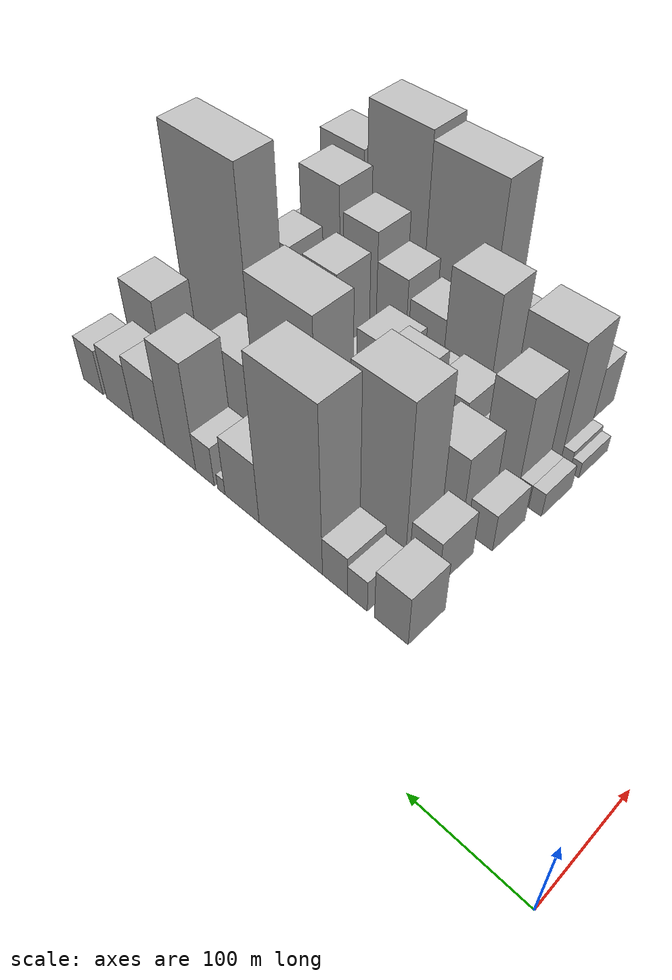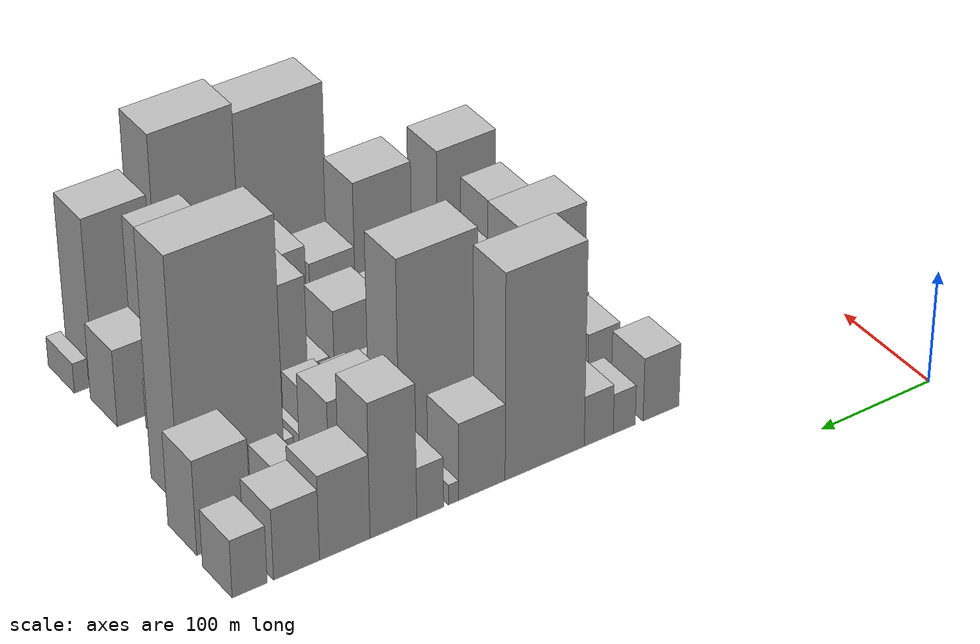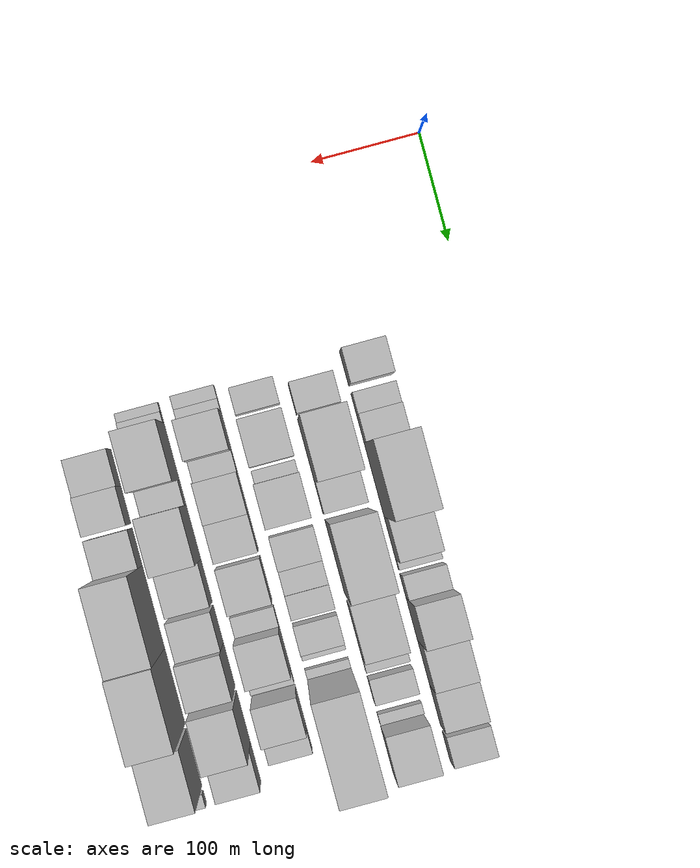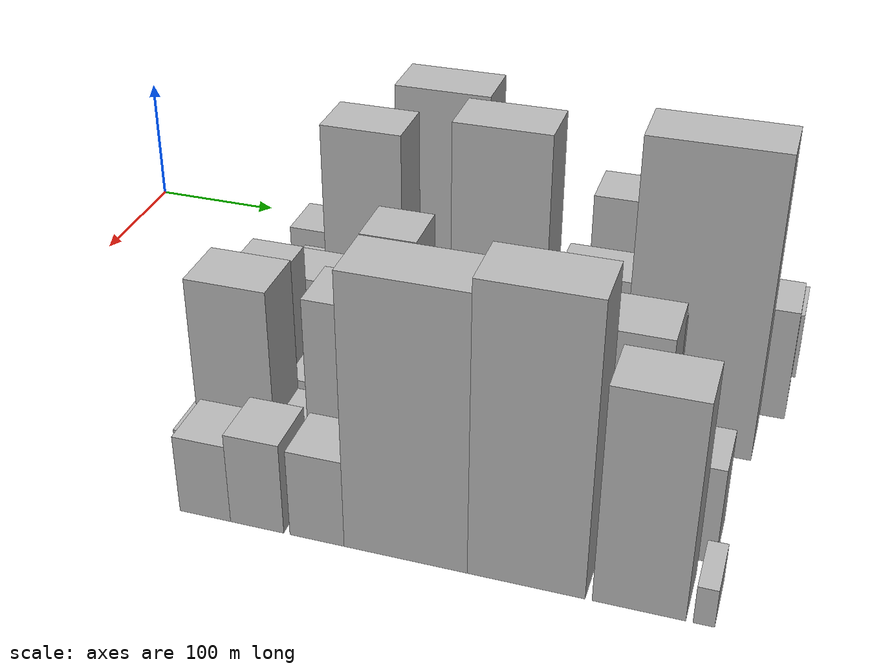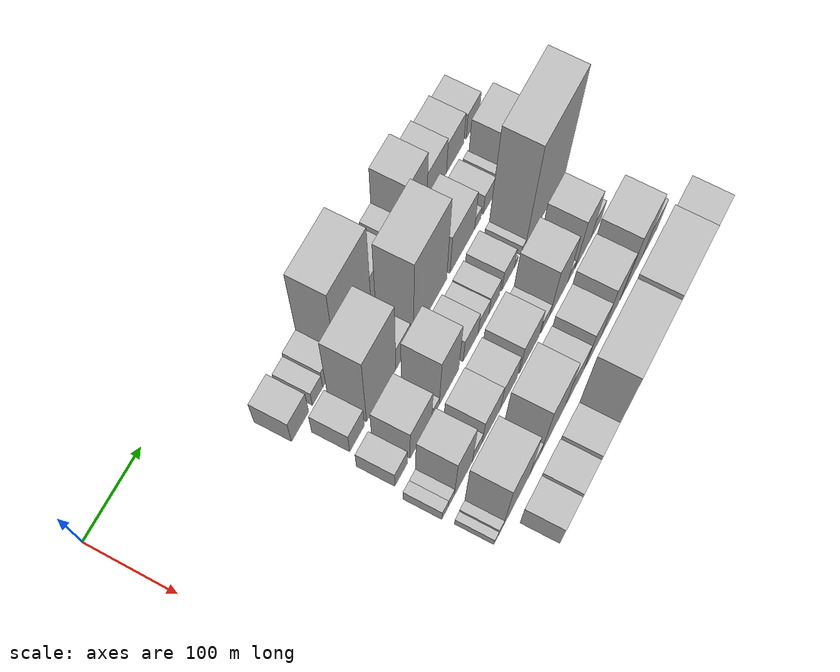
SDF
<sdf version="1.6">
 <world name="default">
  <model name="building_26">
   <static>1</static>
   <pose>100.0000 186.0648 0 0.000000 0.000000 0.000000</pose>
   <link name="link">
    <pose>0 0 28.50 0 0 0</pose>
    <collision name="collision"><geometry><box><size>40.0000 32.3198 57.0000</size></box></geometry></collision>
    <visual name="visual">
     <cast_shadows>0</cast_shadows>
     <geometry><box><size>40.0000 32.3198 57.0000</size></box></geometry>
     <material>
      <script>
       <uri>model://HANNAS_wall/materials/scripts</uri>
       <uri>model://HANNAS_wall/materials/textures</uri>
       <name>vrc/HANNAS_wall</name>
      </script>
     </material>
    </visual>
   </link>
  </model>
  <model name="building_27">
   <static>1</static>
   <pose>100.0000 219.0778 0 0.000000 0.000000 0.000000</pose>
   <link name="link">
    <pose>0 0 18.00 0 0 0</pose>
    <collision name="collision"><geometry><box><size>40.0000 19.7062 36.0000</size></box></geometry></collision>
    <visual name="visual">
     <cast_shadows>0</cast_shadows>
     <geometry><box><size>40.0000 19.7062 36.0000</size></box></geometry>
     <material>
      <script>
       <uri>model://HANNAS_wall/materials/scripts</uri>
       <uri>model://HANNAS_wall/materials/textures</uri>
       <name>vrc/HANNAS_wall</name>
      </script>
     </material>
    </visual>
   </link>
  </model>
  <model name="building_28">
   <static>1</static>
   <pose>100.0000 241.7471 0 0.000000 0.000000 0.000000</pose>
   <link name="link">
    <pose>0 0 22.50 0 0 0</pose>
    <collision name="collision"><geometry><box><size>40.0000 25.6323 45.0000</size></box></geometry></collision>
    <visual name="visual">
     <cast_shadows>0</cast_shadows>
     <geometry><box><size>40.0000 25.6323 45.0000</size></box></geometry>
     <material>
      <script>
       <uri>model://HANNAS_wall/materials/scripts</uri>
       <uri>model://HANNAS_wall/materials/textures</uri>
       <name>vrc/HANNAS_wall</name>
      </script>
     </material>
    </visual>
   </link>
  </model>
  <model name="building_29">
   <static>1</static>
   <pose>100.0000 288.9999 0 0.000000 0.000000 0.000000</pose>
   <link name="link">
    <pose>0 0 91.50 0 0 0</pose>
    <collision name="collision"><geometry><box><size>40.0000 68.8734 183.0000</size></box></geometry></collision>
    <visual name="visual">
     <cast_shadows>0</cast_shadows>
     <geometry><box><size>40.0000 68.8734 183.0000</size></box></geometry>
     <material>
      <script>
       <uri>model://HANNAS_wall/materials/scripts</uri>
       <uri>model://HANNAS_wall/materials/textures</uri>
       <name>vrc/HANNAS_wall</name>
      </script>
     </material>
    </visual>
   </link>
  </model>
  <model name="building_30">
   <static>1</static>
   <pose>100.0000 343.2457 0 0.000000 0.000000 0.000000</pose>
   <link name="link">
    <pose>0 0 34.50 0 0 0</pose>
    <collision name="collision"><geometry><box><size>40.0000 39.6182 69.0000</size></box></geometry></collision>
    <visual name="visual">
     <cast_shadows>0</cast_shadows>
     <geometry><box><size>40.0000 39.6182 69.0000</size></box></geometry>
     <material>
      <script>
       <uri>model://HANNAS_wall/materials/scripts</uri>
       <uri>model://HANNAS_wall/materials/textures</uri>
       <name>vrc/HANNAS_wall</name>
      </script>
     </material>
    </visual>
   </link>
  </model>
  <model name="building_31">
   <static>1</static>
   <pose>100.0000 367.4526 0 0.000000 0.000000 0.000000</pose>
   <link name="link">
    <pose>0 0 9.00 0 0 0</pose>
    <collision name="collision"><geometry><box><size>40.0000 8.7956 18.0000</size></box></geometry></collision>
    <visual name="visual">
     <cast_shadows>0</cast_shadows>
     <geometry><box><size>40.0000 8.7956 18.0000</size></box></geometry>
     <material>
      <script>
       <uri>model://HANNAS_wall/materials/scripts</uri>
       <uri>model://HANNAS_wall/materials/textures</uri>
       <name>vrc/HANNAS_wall</name>
      </script>
     </material>
    </visual>
   </link>
  </model>
  <model name="building_32">
   <static>1</static>
   <pose>100.0000 387.1631 0 0.000000 0.000000 0.000000</pose>
   <link name="link">
    <pose>0 0 22.50 0 0 0</pose>
    <collision name="collision"><geometry><box><size>40.0000 22.6254 45.0000</size></box></geometry></collision>
    <visual name="visual">
     <cast_shadows>0</cast_shadows>
     <geometry><box><size>40.0000 22.6254 45.0000</size></box></geometry>
     <material>
      <script>
       <uri>model://HANNAS_wall/materials/scripts</uri>
       <uri>model://HANNAS_wall/materials/textures</uri>
       <name>vrc/HANNAS_wall</name>
      </script>
     </material>
    </visual>
   </link>
  </model>
  <model name="building_33">
   <static>1</static>
   <pose>100.0000 417.9332 0 0.000000 0.000000 0.000000</pose>
   <link name="link">
    <pose>0 0 60.00 0 0 0</pose>
    <collision name="collision"><geometry><box><size>40.0000 38.9148 120.0000</size></box></geometry></collision>
    <visual name="visual">
     <cast_shadows>0</cast_shadows>
     <geometry><box><size>40.0000 38.9148 120.0000</size></box></geometry>
     <material>
      <script>
       <uri>model://HANNAS_wall/materials/scripts</uri>
       <uri>model://HANNAS_wall/materials/textures</uri>
       <name>vrc/HANNAS_wall</name>
      </script>
     </material>
    </visual>
   </link>
  </model>
  <model name="building_34">
   <static>1</static>
   <pose>100.0000 458.2009 0 0.000000 0.000000 0.000000</pose>
   <link name="link">
    <pose>0 0 37.50 0 0 0</pose>
    <collision name="collision"><geometry><box><size>40.0000 41.6207 75.0000</size></box></geometry></collision>
    <visual name="visual">
     <cast_shadows>0</cast_shadows>
     <geometry><box><size>40.0000 41.6207 75.0000</size></box></geometry>
     <material>
      <script>
       <uri>model://HANNAS_wall/materials/scripts</uri>
       <uri>model://HANNAS_wall/materials/textures</uri>
       <name>vrc/HANNAS_wall</name>
      </script>
     </material>
    </visual>
   </link>
  </model>
  <model name="building_35">
   <static>1</static>
   <pose>100.0000 497.6259 0 0.000000 0.000000 0.000000</pose>
   <link name="link">
    <pose>0 0 31.50 0 0 0</pose>
    <collision name="collision"><geometry><box><size>40.0000 37.2293 63.0000</size></box></geometry></collision>
    <visual name="visual">
     <cast_shadows>0</cast_shadows>
     <geometry><box><size>40.0000 37.2293 63.0000</size></box></geometry>
     <material>
      <script>
       <uri>model://HANNAS_wall/materials/scripts</uri>
       <uri>model://HANNAS_wall/materials/textures</uri>
       <name>vrc/HANNAS_wall</name>
      </script>
     </material>
    </visual>
   </link>
  </model>
  <model name="building_36">
   <static>1</static>
   <pose>100.0000 535.2975 0 0.000000 0.000000 0.000000</pose>
   <link name="link">
    <pose>0 0 25.50 0 0 0</pose>
    <collision name="collision"><geometry><box><size>40.0000 28.1139 51.0000</size></box></geometry></collision>
    <visual name="visual">
     <cast_shadows>0</cast_shadows>
     <geometry><box><size>40.0000 28.1139 51.0000</size></box></geometry>
     <material>
      <script>
       <uri>model://HANNAS_wall/materials/scripts</uri>
       <uri>model://HANNAS_wall/materials/textures</uri>
       <name>vrc/HANNAS_wall</name>
      </script>
     </material>
    </visual>
   </link>
  </model>
  <model name="building_76">
   <static>1</static>
   <pose>152.0000 200.7614 0 0.000000 0.000000 0.000000</pose>
   <link name="link">
    <pose>0 0 25.50 0 0 0</pose>
    <collision name="collision"><geometry><box><size>40.0000 28.4336 51.0000</size></box></geometry></collision>
    <visual name="visual">
     <cast_shadows>0</cast_shadows>
     <geometry><box><size>40.0000 28.4336 51.0000</size></box></geometry>
     <material>
      <script>
       <uri>model://HANNAS_wall/materials/scripts</uri>
       <uri>model://HANNAS_wall/materials/textures</uri>
       <name>vrc/HANNAS_wall</name>
      </script>
     </material>
    </visual>
   </link>
  </model>
  <model name="building_77">
   <static>1</static>
   <pose>152.0000 247.6808 0 0.000000 0.000000 0.000000</pose>
   <link name="link">
    <pose>0 0 85.50 0 0 0</pose>
    <collision name="collision"><geometry><box><size>40.0000 57.4052 171.0000</size></box></geometry></collision>
    <visual name="visual">
     <cast_shadows>0</cast_shadows>
     <geometry><box><size>40.0000 57.4052 171.0000</size></box></geometry>
     <material>
      <script>
       <uri>model://HANNAS_wall/materials/scripts</uri>
       <uri>model://HANNAS_wall/materials/textures</uri>
       <name>vrc/HANNAS_wall</name>
      </script>
     </material>
    </visual>
   </link>
  </model>
  <model name="building_78">
   <static>1</static>
   <pose>152.0000 290.9962 0 0.000000 0.000000 0.000000</pose>
   <link name="link">
    <pose>0 0 28.50 0 0 0</pose>
    <collision name="collision"><geometry><box><size>40.0000 29.2255 57.0000</size></box></geometry></collision>
    <visual name="visual">
     <cast_shadows>0</cast_shadows>
     <geometry><box><size>40.0000 29.2255 57.0000</size></box></geometry>
     <material>
      <script>
       <uri>model://HANNAS_wall/materials/scripts</uri>
       <uri>model://HANNAS_wall/materials/textures</uri>
       <name>vrc/HANNAS_wall</name>
      </script>
     </material>
    </visual>
   </link>
  </model>
  <model name="building_79">
   <static>1</static>
   <pose>152.0000 345.5288 0 0.000000 0.000000 0.000000</pose>
   <link name="link">
    <pose>0 0 93.00 0 0 0</pose>
    <collision name="collision"><geometry><box><size>40.0000 67.8399 186.0000</size></box></geometry></collision>
    <visual name="visual">
     <cast_shadows>0</cast_shadows>
     <geometry><box><size>40.0000 67.8399 186.0000</size></box></geometry>
     <material>
      <script>
       <uri>model://HANNAS_wall/materials/scripts</uri>
       <uri>model://HANNAS_wall/materials/textures</uri>
       <name>vrc/HANNAS_wall</name>
      </script>
     </material>
    </visual>
   </link>
  </model>
  <model name="building_80">
   <static>1</static>
   <pose>152.0000 412.2853 0 0.000000 0.000000 0.000000</pose>
   <link name="link">
    <pose>0 0 43.50 0 0 0</pose>
    <collision name="collision"><geometry><box><size>40.0000 51.6730 87.0000</size></box></geometry></collision>
    <visual name="visual">
     <cast_shadows>0</cast_shadows>
     <geometry><box><size>40.0000 51.6730 87.0000</size></box></geometry>
     <material>
      <script>
       <uri>model://HANNAS_wall/materials/scripts</uri>
       <uri>model://HANNAS_wall/materials/textures</uri>
       <name>vrc/HANNAS_wall</name>
      </script>
     </material>
    </visual>
   </link>
  </model>
  <model name="building_81">
   <static>1</static>
   <pose>152.0000 444.7932 0 0.000000 0.000000 0.000000</pose>
   <link name="link">
    <pose>0 0 13.50 0 0 0</pose>
    <collision name="collision"><geometry><box><size>40.0000 13.3429 27.0000</size></box></geometry></collision>
    <visual name="visual">
     <cast_shadows>0</cast_shadows>
     <geometry><box><size>40.0000 13.3429 27.0000</size></box></geometry>
     <material>
      <script>
       <uri>model://HANNAS_wall/materials/scripts</uri>
       <uri>model://HANNAS_wall/materials/textures</uri>
       <name>vrc/HANNAS_wall</name>
      </script>
     </material>
    </visual>
   </link>
  </model>
  <model name="building_82">
   <static>1</static>
   <pose>152.0000 468.0257 0 0.000000 0.000000 0.000000</pose>
   <link name="link">
    <pose>0 0 21.00 0 0 0</pose>
    <collision name="collision"><geometry><box><size>40.0000 23.1219 42.0000</size></box></geometry></collision>
    <visual name="visual">
     <cast_shadows>0</cast_shadows>
     <geometry><box><size>40.0000 23.1219 42.0000</size></box></geometry>
     <material>
      <script>
       <uri>model://HANNAS_wall/materials/scripts</uri>
       <uri>model://HANNAS_wall/materials/textures</uri>
       <name>vrc/HANNAS_wall</name>
      </script>
     </material>
    </visual>
   </link>
  </model>
  <model name="building_83">
   <static>1</static>
   <pose>152.0000 494.6608 0 0.000000 0.000000 0.000000</pose>
   <link name="link">
    <pose>0 0 12.00 0 0 0</pose>
    <collision name="collision"><geometry><box><size>40.0000 10.1484 24.0000</size></box></geometry></collision>
    <visual name="visual">
     <cast_shadows>0</cast_shadows>
     <geometry><box><size>40.0000 10.1484 24.0000</size></box></geometry>
     <material>
      <script>
       <uri>model://HANNAS_wall/materials/scripts</uri>
       <uri>model://HANNAS_wall/materials/textures</uri>
       <name>vrc/HANNAS_wall</name>
      </script>
     </material>
    </visual>
   </link>
  </model>
  <model name="building_84">
   <static>1</static>
   <pose>152.0000 524.7785 0 0.000000 0.000000 0.000000</pose>
   <link name="link">
    <pose>0 0 42.00 0 0 0</pose>
    <collision name="collision"><geometry><box><size>40.0000 44.0869 84.0000</size></box></geometry></collision>
    <visual name="visual">
     <cast_shadows>0</cast_shadows>
     <geometry><box><size>40.0000 44.0869 84.0000</size></box></geometry>
     <material>
      <script>
       <uri>model://HANNAS_wall/materials/scripts</uri>
       <uri>model://HANNAS_wall/materials/textures</uri>
       <name>vrc/HANNAS_wall</name>
      </script>
     </material>
    </visual>
   </link>
  </model>
  <model name="building_127">
   <static>1</static>
   <pose>204.0000 189.7486 0 0.000000 0.000000 0.000000</pose>
   <link name="link">
    <pose>0 0 21.00 0 0 0</pose>
    <collision name="collision"><geometry><box><size>40.0000 24.5822 42.0000</size></box></geometry></collision>
    <visual name="visual">
     <cast_shadows>0</cast_shadows>
     <geometry><box><size>40.0000 24.5822 42.0000</size></box></geometry>
     <material>
      <script>
       <uri>model://HANNAS_wall/materials/scripts</uri>
       <uri>model://HANNAS_wall/materials/textures</uri>
       <name>vrc/HANNAS_wall</name>
      </script>
     </material>
    </visual>
   </link>
  </model>
  <model name="building_128">
   <static>1</static>
   <pose>204.0000 228.4447 0 0.000000 0.000000 0.000000</pose>
   <link name="link">
    <pose>0 0 40.50 0 0 0</pose>
    <collision name="collision"><geometry><box><size>40.0000 42.8100 81.0000</size></box></geometry></collision>
    <visual name="visual">
     <cast_shadows>0</cast_shadows>
     <geometry><box><size>40.0000 42.8100 81.0000</size></box></geometry>
     <material>
      <script>
       <uri>model://HANNAS_wall/materials/scripts</uri>
       <uri>model://HANNAS_wall/materials/textures</uri>
       <name>vrc/HANNAS_wall</name>
      </script>
     </material>
    </visual>
   </link>
  </model>
  <model name="building_129">
   <static>1</static>
   <pose>204.0000 258.7062 0 0.000000 0.000000 0.000000</pose>
   <link name="link">
    <pose>0 0 12.00 0 0 0</pose>
    <collision name="collision"><geometry><box><size>40.0000 11.7131 24.0000</size></box></geometry></collision>
    <visual name="visual">
     <cast_shadows>0</cast_shadows>
     <geometry><box><size>40.0000 11.7131 24.0000</size></box></geometry>
     <material>
      <script>
       <uri>model://HANNAS_wall/materials/scripts</uri>
       <uri>model://HANNAS_wall/materials/textures</uri>
       <name>vrc/HANNAS_wall</name>
      </script>
     </material>
    </visual>
   </link>
  </model>
  <model name="building_130">
   <static>1</static>
   <pose>204.0000 284.2913 0 0.000000 0.000000 0.000000</pose>
   <link name="link">
    <pose>0 0 61.50 0 0 0</pose>
    <collision name="collision"><geometry><box><size>40.0000 39.4571 123.0000</size></box></geometry></collision>
    <visual name="visual">
     <cast_shadows>0</cast_shadows>
     <geometry><box><size>40.0000 39.4571 123.0000</size></box></geometry>
     <material>
      <script>
       <uri>model://HANNAS_wall/materials/scripts</uri>
       <uri>model://HANNAS_wall/materials/textures</uri>
       <name>vrc/HANNAS_wall</name>
      </script>
     </material>
    </visual>
   </link>
  </model>
  <model name="building_131">
   <static>1</static>
   <pose>204.0000 328.4555 0 0.000000 0.000000 0.000000</pose>
   <link name="link">
    <pose>0 0 28.50 0 0 0</pose>
    <collision name="collision"><geometry><box><size>40.0000 30.8713 57.0000</size></box></geometry></collision>
    <visual name="visual">
     <cast_shadows>0</cast_shadows>
     <geometry><box><size>40.0000 30.8713 57.0000</size></box></geometry>
     <material>
      <script>
       <uri>model://HANNAS_wall/materials/scripts</uri>
       <uri>model://HANNAS_wall/materials/textures</uri>
       <name>vrc/HANNAS_wall</name>
      </script>
     </material>
    </visual>
   </link>
  </model>
  <model name="building_132">
   <static>1</static>
   <pose>204.0000 355.1463 0 0.000000 0.000000 0.000000</pose>
   <link name="link">
    <pose>0 0 19.50 0 0 0</pose>
    <collision name="collision"><geometry><box><size>40.0000 22.5103 39.0000</size></box></geometry></collision>
    <visual name="visual">
     <cast_shadows>0</cast_shadows>
     <geometry><box><size>40.0000 22.5103 39.0000</size></box></geometry>
     <material>
      <script>
       <uri>model://HANNAS_wall/materials/scripts</uri>
       <uri>model://HANNAS_wall/materials/textures</uri>
       <name>vrc/HANNAS_wall</name>
      </script>
     </material>
    </visual>
   </link>
  </model>
  <model name="building_133">
   <static>1</static>
   <pose>204.0000 377.4604 0 0.000000 0.000000 0.000000</pose>
   <link name="link">
    <pose>0 0 21.00 0 0 0</pose>
    <collision name="collision"><geometry><box><size>40.0000 22.1180 42.0000</size></box></geometry></collision>
    <visual name="visual">
     <cast_shadows>0</cast_shadows>
     <geometry><box><size>40.0000 22.1180 42.0000</size></box></geometry>
     <material>
      <script>
       <uri>model://HANNAS_wall/materials/scripts</uri>
       <uri>model://HANNAS_wall/materials/textures</uri>
       <name>vrc/HANNAS_wall</name>
      </script>
     </material>
    </visual>
   </link>
  </model>
  <model name="building_134">
   <static>1</static>
   <pose>204.0000 406.9200 0 0.000000 0.000000 0.000000</pose>
   <link name="link">
    <pose>0 0 24.00 0 0 0</pose>
    <collision name="collision"><geometry><box><size>40.0000 26.8011 48.0000</size></box></geometry></collision>
    <visual name="visual">
     <cast_shadows>0</cast_shadows>
     <geometry><box><size>40.0000 26.8011 48.0000</size></box></geometry>
     <material>
      <script>
       <uri>model://HANNAS_wall/materials/scripts</uri>
       <uri>model://HANNAS_wall/materials/textures</uri>
       <name>vrc/HANNAS_wall</name>
      </script>
     </material>
    </visual>
   </link>
  </model>
  <model name="building_135">
   <static>1</static>
   <pose>204.0000 423.8524 0 0.000000 0.000000 0.000000</pose>
   <link name="link">
    <pose>0 0 7.50 0 0 0</pose>
    <collision name="collision"><geometry><box><size>40.0000 7.0638 15.0000</size></box></geometry></collision>
    <visual name="visual">
     <cast_shadows>0</cast_shadows>
     <geometry><box><size>40.0000 7.0638 15.0000</size></box></geometry>
     <material>
      <script>
       <uri>model://HANNAS_wall/materials/scripts</uri>
       <uri>model://HANNAS_wall/materials/textures</uri>
       <name>vrc/HANNAS_wall</name>
      </script>
     </material>
    </visual>
   </link>
  </model>
  <model name="building_136">
   <static>1</static>
   <pose>204.0000 439.6234 0 0.000000 0.000000 0.000000</pose>
   <link name="link">
    <pose>0 0 10.50 0 0 0</pose>
    <collision name="collision"><geometry><box><size>40.0000 8.4782 21.0000</size></box></geometry></collision>
    <visual name="visual">
     <cast_shadows>0</cast_shadows>
     <geometry><box><size>40.0000 8.4782 21.0000</size></box></geometry>
     <material>
      <script>
       <uri>model://HANNAS_wall/materials/scripts</uri>
       <uri>model://HANNAS_wall/materials/textures</uri>
       <name>vrc/HANNAS_wall</name>
      </script>
     </material>
    </visual>
   </link>
  </model>
  <model name="building_137">
   <static>1</static>
   <pose>204.0000 487.2718 0 0.000000 0.000000 0.000000</pose>
   <link name="link">
    <pose>0 0 109.50 0 0 0</pose>
    <collision name="collision"><geometry><box><size>40.0000 86.8187 219.0000</size></box></geometry></collision>
    <visual name="visual">
     <cast_shadows>0</cast_shadows>
     <geometry><box><size>40.0000 86.8187 219.0000</size></box></geometry>
     <material>
      <script>
       <uri>model://HANNAS_wall/materials/scripts</uri>
       <uri>model://HANNAS_wall/materials/textures</uri>
       <name>vrc/HANNAS_wall</name>
      </script>
     </material>
    </visual>
   </link>
  </model>
  <model name="building_181">
   <static>1</static>
   <pose>256.0000 176.6513 0 0.000000 0.000000 0.000000</pose>
   <link name="link">
    <pose>0 0 13.50 0 0 0</pose>
    <collision name="collision"><geometry><box><size>40.0000 12.3559 27.0000</size></box></geometry></collision>
    <visual name="visual">
     <cast_shadows>0</cast_shadows>
     <geometry><box><size>40.0000 12.3559 27.0000</size></box></geometry>
     <material>
      <script>
       <uri>model://HANNAS_wall/materials/scripts</uri>
       <uri>model://HANNAS_wall/materials/textures</uri>
       <name>vrc/HANNAS_wall</name>
      </script>
     </material>
    </visual>
   </link>
  </model>
  <model name="building_182">
   <static>1</static>
   <pose>256.0000 188.7570 0 0.000000 0.000000 0.000000</pose>
   <link name="link">
    <pose>0 0 13.50 0 0 0</pose>
    <collision name="collision"><geometry><box><size>40.0000 11.8554 27.0000</size></box></geometry></collision>
    <visual name="visual">
     <cast_shadows>0</cast_shadows>
     <geometry><box><size>40.0000 11.8554 27.0000</size></box></geometry>
     <material>
      <script>
       <uri>model://HANNAS_wall/materials/scripts</uri>
       <uri>model://HANNAS_wall/materials/textures</uri>
       <name>vrc/HANNAS_wall</name>
      </script>
     </material>
    </visual>
   </link>
  </model>
  <model name="building_183">
   <static>1</static>
   <pose>256.0000 212.5955 0 0.000000 0.000000 0.000000</pose>
   <link name="link">
    <pose>0 0 57.00 0 0 0</pose>
    <collision name="collision"><geometry><box><size>40.0000 35.8216 114.0000</size></box></geometry></collision>
    <visual name="visual">
     <cast_shadows>0</cast_shadows>
     <geometry><box><size>40.0000 35.8216 114.0000</size></box></geometry>
     <material>
      <script>
       <uri>model://HANNAS_wall/materials/scripts</uri>
       <uri>model://HANNAS_wall/materials/textures</uri>
       <name>vrc/HANNAS_wall</name>
      </script>
     </material>
    </visual>
   </link>
  </model>
  <model name="building_184">
   <static>1</static>
   <pose>256.0000 240.2726 0 0.000000 0.000000 0.000000</pose>
   <link name="link">
    <pose>0 0 18.00 0 0 0</pose>
    <collision name="collision"><geometry><box><size>40.0000 19.5327 36.0000</size></box></geometry></collision>
    <visual name="visual">
     <cast_shadows>0</cast_shadows>
     <geometry><box><size>40.0000 19.5327 36.0000</size></box></geometry>
     <material>
      <script>
       <uri>model://HANNAS_wall/materials/scripts</uri>
       <uri>model://HANNAS_wall/materials/textures</uri>
       <name>vrc/HANNAS_wall</name>
      </script>
     </material>
    </visual>
   </link>
  </model>
  <model name="building_185">
   <static>1</static>
   <pose>256.0000 268.9663 0 0.000000 0.000000 0.000000</pose>
   <link name="link">
    <pose>0 0 34.50 0 0 0</pose>
    <collision name="collision"><geometry><box><size>40.0000 37.8547 69.0000</size></box></geometry></collision>
    <visual name="visual">
     <cast_shadows>0</cast_shadows>
     <geometry><box><size>40.0000 37.8547 69.0000</size></box></geometry>
     <material>
      <script>
       <uri>model://HANNAS_wall/materials/scripts</uri>
       <uri>model://HANNAS_wall/materials/textures</uri>
       <name>vrc/HANNAS_wall</name>
      </script>
     </material>
    </visual>
   </link>
  </model>
  <model name="building_186">
   <static>1</static>
   <pose>256.0000 305.1398 0 0.000000 0.000000 0.000000</pose>
   <link name="link">
    <pose>0 0 31.50 0 0 0</pose>
    <collision name="collision"><geometry><box><size>40.0000 34.4922 63.0000</size></box></geometry></collision>
    <visual name="visual">
     <cast_shadows>0</cast_shadows>
     <geometry><box><size>40.0000 34.4922 63.0000</size></box></geometry>
     <material>
      <script>
       <uri>model://HANNAS_wall/materials/scripts</uri>
       <uri>model://HANNAS_wall/materials/textures</uri>
       <name>vrc/HANNAS_wall</name>
      </script>
     </material>
    </visual>
   </link>
  </model>
  <model name="building_187">
   <static>1</static>
   <pose>256.0000 348.0001 0 0.000000 0.000000 0.000000</pose>
   <link name="link">
    <pose>0 0 36.00 0 0 0</pose>
    <collision name="collision"><geometry><box><size>40.0000 41.2284 72.0000</size></box></geometry></collision>
    <visual name="visual">
     <cast_shadows>0</cast_shadows>
     <geometry><box><size>40.0000 41.2284 72.0000</size></box></geometry>
     <material>
      <script>
       <uri>model://HANNAS_wall/materials/scripts</uri>
       <uri>model://HANNAS_wall/materials/textures</uri>
       <name>vrc/HANNAS_wall</name>
      </script>
     </material>
    </visual>
   </link>
  </model>
  <model name="building_188">
   <static>1</static>
   <pose>256.0000 381.9566 0 0.000000 0.000000 0.000000</pose>
   <link name="link">
    <pose>0 0 16.50 0 0 0</pose>
    <collision name="collision"><geometry><box><size>40.0000 18.6846 33.0000</size></box></geometry></collision>
    <visual name="visual">
     <cast_shadows>0</cast_shadows>
     <geometry><box><size>40.0000 18.6846 33.0000</size></box></geometry>
     <material>
      <script>
       <uri>model://HANNAS_wall/materials/scripts</uri>
       <uri>model://HANNAS_wall/materials/textures</uri>
       <name>vrc/HANNAS_wall</name>
      </script>
     </material>
    </visual>
   </link>
  </model>
  <model name="building_189">
   <static>1</static>
   <pose>256.0000 411.0175 0 0.000000 0.000000 0.000000</pose>
   <link name="link">
    <pose>0 0 57.00 0 0 0</pose>
    <collision name="collision"><geometry><box><size>40.0000 39.4371 114.0000</size></box></geometry></collision>
    <visual name="visual">
     <cast_shadows>0</cast_shadows>
     <geometry><box><size>40.0000 39.4371 114.0000</size></box></geometry>
     <material>
      <script>
       <uri>model://HANNAS_wall/materials/scripts</uri>
       <uri>model://HANNAS_wall/materials/textures</uri>
       <name>vrc/HANNAS_wall</name>
      </script>
     </material>
    </visual>
   </link>
  </model>
  <model name="building_190">
   <static>1</static>
   <pose>256.0000 437.3596 0 0.000000 0.000000 0.000000</pose>
   <link name="link">
    <pose>0 0 13.50 0 0 0</pose>
    <collision name="collision"><geometry><box><size>40.0000 13.2470 27.0000</size></box></geometry></collision>
    <visual name="visual">
     <cast_shadows>0</cast_shadows>
     <geometry><box><size>40.0000 13.2470 27.0000</size></box></geometry>
     <material>
      <script>
       <uri>model://HANNAS_wall/materials/scripts</uri>
       <uri>model://HANNAS_wall/materials/textures</uri>
       <name>vrc/HANNAS_wall</name>
      </script>
     </material>
    </visual>
   </link>
  </model>
  <model name="building_191">
   <static>1</static>
   <pose>256.0000 464.4315 0 0.000000 0.000000 0.000000</pose>
   <link name="link">
    <pose>0 0 55.50 0 0 0</pose>
    <collision name="collision"><geometry><box><size>40.0000 34.8967 111.0000</size></box></geometry></collision>
    <visual name="visual">
     <cast_shadows>0</cast_shadows>
     <geometry><box><size>40.0000 34.8967 111.0000</size></box></geometry>
     <material>
      <script>
       <uri>model://HANNAS_wall/materials/scripts</uri>
       <uri>model://HANNAS_wall/materials/textures</uri>
       <name>vrc/HANNAS_wall</name>
      </script>
     </material>
    </visual>
   </link>
  </model>
  <model name="building_192">
   <static>1</static>
   <pose>256.0000 493.5276 0 0.000000 0.000000 0.000000</pose>
   <link name="link">
    <pose>0 0 22.50 0 0 0</pose>
    <collision name="collision"><geometry><box><size>40.0000 23.2955 45.0000</size></box></geometry></collision>
    <visual name="visual">
     <cast_shadows>0</cast_shadows>
     <geometry><box><size>40.0000 23.2955 45.0000</size></box></geometry>
     <material>
      <script>
       <uri>model://HANNAS_wall/materials/scripts</uri>
       <uri>model://HANNAS_wall/materials/textures</uri>
       <name>vrc/HANNAS_wall</name>
      </script>
     </material>
    </visual>
   </link>
  </model>
  <model name="building_233">
   <static>1</static>
   <pose>308.0000 176.5053 0 0.000000 0.000000 0.000000</pose>
   <link name="link">
    <pose>0 0 9.00 0 0 0</pose>
    <collision name="collision"><geometry><box><size>40.0000 8.6848 18.0000</size></box></geometry></collision>
    <visual name="visual">
     <cast_shadows>0</cast_shadows>
     <geometry><box><size>40.0000 8.6848 18.0000</size></box></geometry>
     <material>
      <script>
       <uri>model://HANNAS_wall/materials/scripts</uri>
       <uri>model://HANNAS_wall/materials/textures</uri>
       <name>vrc/HANNAS_wall</name>
      </script>
     </material>
    </visual>
   </link>
  </model>
  <model name="building_234">
   <static>1</static>
   <pose>308.0000 185.8457 0 0.000000 0.000000 0.000000</pose>
   <link name="link">
    <pose>0 0 12.00 0 0 0</pose>
    <collision name="collision"><geometry><box><size>40.0000 9.9959 24.0000</size></box></geometry></collision>
    <visual name="visual">
     <cast_shadows>0</cast_shadows>
     <geometry><box><size>40.0000 9.9959 24.0000</size></box></geometry>
     <material>
      <script>
       <uri>model://HANNAS_wall/materials/scripts</uri>
       <uri>model://HANNAS_wall/materials/textures</uri>
       <name>vrc/HANNAS_wall</name>
      </script>
     </material>
    </visual>
   </link>
  </model>
  <model name="building_235">
   <static>1</static>
   <pose>308.0000 217.3483 0 0.000000 0.000000 0.000000</pose>
   <link name="link">
    <pose>0 0 67.50 0 0 0</pose>
    <collision name="collision"><geometry><box><size>40.0000 53.0093 135.0000</size></box></geometry></collision>
    <visual name="visual">
     <cast_shadows>0</cast_shadows>
     <geometry><box><size>40.0000 53.0093 135.0000</size></box></geometry>
     <material>
      <script>
       <uri>model://HANNAS_wall/materials/scripts</uri>
       <uri>model://HANNAS_wall/materials/textures</uri>
       <name>vrc/HANNAS_wall</name>
      </script>
     </material>
    </visual>
   </link>
  </model>
  <model name="building_236">
   <static>1</static>
   <pose>308.0000 255.2331 0 0.000000 0.000000 0.000000</pose>
   <link name="link">
    <pose>0 0 19.50 0 0 0</pose>
    <collision name="collision"><geometry><box><size>40.0000 22.7603 39.0000</size></box></geometry></collision>
    <visual name="visual">
     <cast_shadows>0</cast_shadows>
     <geometry><box><size>40.0000 22.7603 39.0000</size></box></geometry>
     <material>
      <script>
       <uri>model://HANNAS_wall/materials/scripts</uri>
       <uri>model://HANNAS_wall/materials/textures</uri>
       <name>vrc/HANNAS_wall</name>
      </script>
     </material>
    </visual>
   </link>
  </model>
  <model name="building_237">
   <static>1</static>
   <pose>308.0000 291.8628 0 0.000000 0.000000 0.000000</pose>
   <link name="link">
    <pose>0 0 67.50 0 0 0</pose>
    <collision name="collision"><geometry><box><size>40.0000 50.4992 135.0000</size></box></geometry></collision>
    <visual name="visual">
     <cast_shadows>0</cast_shadows>
     <geometry><box><size>40.0000 50.4992 135.0000</size></box></geometry>
     <material>
      <script>
       <uri>model://HANNAS_wall/materials/scripts</uri>
       <uri>model://HANNAS_wall/materials/textures</uri>
       <name>vrc/HANNAS_wall</name>
      </script>
     </material>
    </visual>
   </link>
  </model>
  <model name="building_238">
   <static>1</static>
   <pose>308.0000 336.7616 0 0.000000 0.000000 0.000000</pose>
   <link name="link">
    <pose>0 0 39.00 0 0 0</pose>
    <collision name="collision"><geometry><box><size>40.0000 39.2983 78.0000</size></box></geometry></collision>
    <visual name="visual">
     <cast_shadows>0</cast_shadows>
     <geometry><box><size>40.0000 39.2983 78.0000</size></box></geometry>
     <material>
      <script>
       <uri>model://HANNAS_wall/materials/scripts</uri>
       <uri>model://HANNAS_wall/materials/textures</uri>
       <name>vrc/HANNAS_wall</name>
      </script>
     </material>
    </visual>
   </link>
  </model>
  <model name="building_239">
   <static>1</static>
   <pose>308.0000 376.8420 0 0.000000 0.000000 0.000000</pose>
   <link name="link">
    <pose>0 0 48.00 0 0 0</pose>
    <collision name="collision"><geometry><box><size>40.0000 34.8626 96.0000</size></box></geometry></collision>
    <visual name="visual">
     <cast_shadows>0</cast_shadows>
     <geometry><box><size>40.0000 34.8626 96.0000</size></box></geometry>
     <material>
      <script>
       <uri>model://HANNAS_wall/materials/scripts</uri>
       <uri>model://HANNAS_wall/materials/textures</uri>
       <name>vrc/HANNAS_wall</name>
      </script>
     </material>
    </visual>
   </link>
  </model>
  <model name="building_240">
   <static>1</static>
   <pose>308.0000 414.3806 0 0.000000 0.000000 0.000000</pose>
   <link name="link">
    <pose>0 0 63.00 0 0 0</pose>
    <collision name="collision"><geometry><box><size>40.0000 40.2146 126.0000</size></box></geometry></collision>
    <visual name="visual">
     <cast_shadows>0</cast_shadows>
     <geometry><box><size>40.0000 40.2146 126.0000</size></box></geometry>
     <material>
      <script>
       <uri>model://HANNAS_wall/materials/scripts</uri>
       <uri>model://HANNAS_wall/materials/textures</uri>
       <name>vrc/HANNAS_wall</name>
      </script>
     </material>
    </visual>
   </link>
  </model>
  <model name="building_241">
   <static>1</static>
   <pose>308.0000 462.2182 0 0.000000 0.000000 0.000000</pose>
   <link name="link">
    <pose>0 0 75.00 0 0 0</pose>
    <collision name="collision"><geometry><box><size>40.0000 47.4605 150.0000</size></box></geometry></collision>
    <visual name="visual">
     <cast_shadows>0</cast_shadows>
     <geometry><box><size>40.0000 47.4605 150.0000</size></box></geometry>
     <material>
      <script>
       <uri>model://HANNAS_wall/materials/scripts</uri>
       <uri>model://HANNAS_wall/materials/textures</uri>
       <name>vrc/HANNAS_wall</name>
      </script>
     </material>
    </visual>
   </link>
  </model>
  <model name="building_242">
   <static>1</static>
   <pose>308.0000 504.0928 0 0.000000 0.000000 0.000000</pose>
   <link name="link">
    <pose>0 0 34.50 0 0 0</pose>
    <collision name="collision"><geometry><box><size>40.0000 36.2887 69.0000</size></box></geometry></collision>
    <visual name="visual">
     <cast_shadows>0</cast_shadows>
     <geometry><box><size>40.0000 36.2887 69.0000</size></box></geometry>
     <material>
      <script>
       <uri>model://HANNAS_wall/materials/scripts</uri>
       <uri>model://HANNAS_wall/materials/textures</uri>
       <name>vrc/HANNAS_wall</name>
      </script>
     </material>
    </visual>
   </link>
  </model>
  <model name="building_284">
   <static>1</static>
   <pose>360.0000 217.9622 0 0.000000 0.000000 0.000000</pose>
   <link name="link">
    <pose>0 0 28.50 0 0 0</pose>
    <collision name="collision"><geometry><box><size>40.0000 33.9134 57.0000</size></box></geometry></collision>
    <visual name="visual">
     <cast_shadows>0</cast_shadows>
     <geometry><box><size>40.0000 33.9134 57.0000</size></box></geometry>
     <material>
      <script>
       <uri>model://HANNAS_wall/materials/scripts</uri>
       <uri>model://HANNAS_wall/materials/textures</uri>
       <name>vrc/HANNAS_wall</name>
      </script>
     </material>
    </visual>
   </link>
  </model>
  <model name="building_285">
   <static>1</static>
   <pose>360.0000 252.4381 0 0.000000 0.000000 0.000000</pose>
   <link name="link">
    <pose>0 0 33.00 0 0 0</pose>
    <collision name="collision"><geometry><box><size>40.0000 35.0383 66.0000</size></box></geometry></collision>
    <visual name="visual">
     <cast_shadows>0</cast_shadows>
     <geometry><box><size>40.0000 35.0383 66.0000</size></box></geometry>
     <material>
      <script>
       <uri>model://HANNAS_wall/materials/scripts</uri>
       <uri>model://HANNAS_wall/materials/textures</uri>
       <name>vrc/HANNAS_wall</name>
      </script>
     </material>
    </visual>
   </link>
  </model>
  <model name="building_286">
   <static>1</static>
   <pose>360.0000 291.3898 0 0.000000 0.000000 0.000000</pose>
   <link name="link">
    <pose>0 0 31.50 0 0 0</pose>
    <collision name="collision"><geometry><box><size>40.0000 34.8651 63.0000</size></box></geometry></collision>
    <visual name="visual">
     <cast_shadows>0</cast_shadows>
     <geometry><box><size>40.0000 34.8651 63.0000</size></box></geometry>
     <material>
      <script>
       <uri>model://HANNAS_wall/materials/scripts</uri>
       <uri>model://HANNAS_wall/materials/textures</uri>
       <name>vrc/HANNAS_wall</name>
      </script>
     </material>
    </visual>
   </link>
  </model>
  <model name="building_287">
   <static>1</static>
   <pose>360.0000 347.0602 0 0.000000 0.000000 0.000000</pose>
   <link name="link">
    <pose>0 0 96.00 0 0 0</pose>
    <collision name="collision"><geometry><box><size>40.0000 76.4757 192.0000</size></box></geometry></collision>
    <visual name="visual">
     <cast_shadows>0</cast_shadows>
     <geometry><box><size>40.0000 76.4757 192.0000</size></box></geometry>
     <material>
      <script>
       <uri>model://HANNAS_wall/materials/scripts</uri>
       <uri>model://HANNAS_wall/materials/textures</uri>
       <name>vrc/HANNAS_wall</name>
      </script>
     </material>
    </visual>
   </link>
  </model>
  <model name="building_288">
   <static>1</static>
   <pose>360.0000 420.3547 0 0.000000 0.000000 0.000000</pose>
   <link name="link">
    <pose>0 0 100.50 0 0 0</pose>
    <collision name="collision"><geometry><box><size>40.0000 70.1132 201.0000</size></box></geometry></collision>
    <visual name="visual">
     <cast_shadows>0</cast_shadows>
     <geometry><box><size>40.0000 70.1132 201.0000</size></box></geometry>
     <material>
      <script>
       <uri>model://HANNAS_wall/materials/scripts</uri>
       <uri>model://HANNAS_wall/materials/textures</uri>
       <name>vrc/HANNAS_wall</name>
      </script>
     </material>
    </visual>
   </link>
  </model>
  <model name="building_289">
   <static>1</static>
   <pose>360.0000 486.1214 0 0.000000 0.000000 0.000000</pose>
   <link name="link">
    <pose>0 0 75.00 0 0 0</pose>
    <collision name="collision"><geometry><box><size>40.0000 53.4203 150.0000</size></box></geometry></collision>
    <visual name="visual">
     <cast_shadows>0</cast_shadows>
     <geometry><box><size>40.0000 53.4203 150.0000</size></box></geometry>
     <material>
      <script>
       <uri>model://HANNAS_wall/materials/scripts</uri>
       <uri>model://HANNAS_wall/materials/textures</uri>
       <name>vrc/HANNAS_wall</name>
      </script>
     </material>
    </visual>
   </link>
  </model>
  <model name="building_290">
   <static>1</static>
   <pose>360.0000 522.8915 0 0.000000 0.000000 0.000000</pose>
   <link name="link">
    <pose>0 0 13.50 0 0 0</pose>
    <collision name="collision"><geometry><box><size>40.0000 12.1199 27.0000</size></box></geometry></collision>
    <visual name="visual">
     <cast_shadows>0</cast_shadows>
     <geometry><box><size>40.0000 12.1199 27.0000</size></box></geometry>
     <material>
      <script>
       <uri>model://HANNAS_wall/materials/scripts</uri>
       <uri>model://HANNAS_wall/materials/textures</uri>
       <name>vrc/HANNAS_wall</name>
      </script>
     </material>
    </visual>
   </link>
  </model>
 </world>
</sdf>
